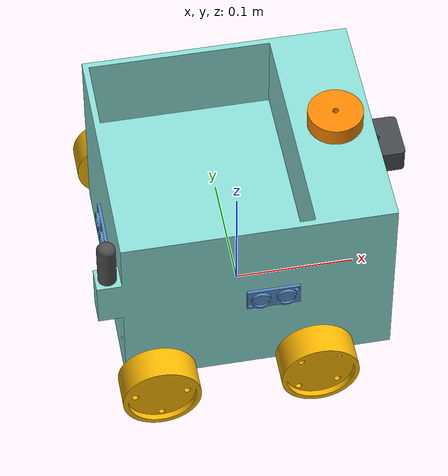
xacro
<?xml version="1.0" ?>
<!-- Generated using onshape-to-robot -->
<!-- Onshape document_id: 3023829f8e4e5c564f6b4985 -->
<robot name="tetrabot" xmlns:xacro="http://www.ros.org/wiki/xacro">

    <xacro:include filename="xacro_properties/xacro_properties.xacro" />
    <xacro:include filename="modules/base_y_llantas.xacro" />
    <xacro:include filename="modules/camara.xacro" />
    <xacro:include filename="modules/lidar.xacro" />
    <xacro:include filename="modules/accesorios.xacro" />
    <xacro:include filename="gazebo/gazebo_plugins.xacro" />
    <xacro:include filename="gazebo/gazebo_properties.xacro" />

</robot>

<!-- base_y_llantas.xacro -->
<!-- Generated using onshape-to-robot -->
<!-- Onshape document_id: 3023829f8e4e5c564f6b4985 -->
<robot xmlns:xacro="http://www.ros.org/wiki/xacro">

  <!-- Link base footprint -->
  <link name="base_footprint"/>
  <!-- Joint base footprint -->
  <joint name="base_joint" type="fixed">
      <parent link="base_footprint" />
      <child link="base_link" />
      <origin xyz="0 0 0.0158450026" rpy="0 0 0" />
  </joint>

  <!-- Link base_t -->
  <link name="base_link">
    <inertial>
      <origin xyz="0.0107572 -0.000338235 0.0779814" rpy="0 0 0"/>
      <mass value="4.83557"/>
      <inertia ixx="0.0260829" ixy="-0.000213984" ixz="-0.00395219" iyy="0.0299972" iyz="3.98093e-05" izz="0.0405276"/>
    </inertial>
    <!-- Part base_t -->
    <visual>
      <origin xyz="0 0 0" rpy="0 -0 0"/>
      <geometry>
        <mesh filename="package://my_robot_description/assets/base_t.stl"/>
      </geometry>
      <material name="base_t_material">
        <color rgba="0.537255 0.854902 0.827451 1"/>
      </material>
    </visual>
    <collision>
      <origin xyz="0 0 0" rpy="0 -0 0"/>
      <geometry>
        <mesh filename="package://my_robot_description/assets/base_t.stl"/>
      </geometry>
    </collision>
  </link>
  <!-- Link llanta_dere_del -->
  <link name="llanta_dere_del_link">
    <inertial>
      <origin xyz="-0 -0 -0.0264625" rpy="0 0 0"/>
      <mass value="0.0901579"/>
      <inertia ixx="2.81915e-05" ixy="0" ixz="0" iyy="2.83576e-05" iyz="-0" izz="4.79296e-05"/>
    </inertial>
    <!-- Part llanta_dere_del -->
    <visual>
      <origin xyz="-0 0 -0.015" rpy="1.5708 0 0"/>
      <geometry>
        <mesh filename="package://my_robot_description/assets/llanta_dere_del.stl"/>
      </geometry>
      <material name="llanta_dere_del_material">
        <color rgba="0.980392 0.713725 0.00392157 1"/>
      </material>
    </visual>
    <collision>
      <origin xyz="-0 0 -0.015" rpy="1.5708 0 0"/>
      <geometry>
        <mesh filename="package://my_robot_description/assets/llanta_dere_del.stl"/>
      </geometry>
    </collision>
  </link>
  <!-- Joint from base_t to llanta_dere_del -->
  <joint name="llanta_dere_del_joint" type="continuous">
    <origin xyz="0.0441 -0.095 0.0162" rpy="-1.5708 0.765592 0"/>
    <parent link="base_link"/>
    <child link="llanta_dere_del_link"/>
    <axis xyz="0 0 1"/>
    <limit effort="100" velocity="100"/>
  </joint>
  <!-- Link llanta_dere_tra -->
  <link name="llanta_dere_tra_link">
    <inertial>
      <origin xyz="-0 -0 -0.0264625" rpy="0 0 0"/>
      <mass value="0.0901579"/>
      <inertia ixx="2.81915e-05" ixy="0" ixz="0" iyy="2.83576e-05" iyz="0" izz="4.79296e-05"/>
    </inertial>
    <!-- Part llanta_dere_tra -->
    <visual>
      <origin xyz="-0 0 -0.015" rpy="1.5708 -0 0"/>
      <geometry>
        <mesh filename="package://my_robot_description/assets/llanta_dere_tra.stl"/>
      </geometry>
      <material name="llanta_dere_tra_material">
        <color rgba="0.980392 0.713725 0.00392157 1"/>
      </material>
    </visual>
    <collision>
      <origin xyz="-0 0 -0.015" rpy="1.5708 -0 0"/>
      <geometry>
        <mesh filename="package://my_robot_description/assets/llanta_dere_tra.stl"/>
      </geometry>
    </collision>
  </link>
  <!-- Joint from base_t to llanta_dere_tra -->
  <joint name="llanta_dere_tra_joint" type="continuous">
    <origin xyz="-0.0859 -0.095 0.0162" rpy="-1.5708 -0 0"/>
    <parent link="base_link"/>
    <child link="llanta_dere_tra_link"/>
    <axis xyz="0 0 1"/>
    <limit effort="100" velocity="100"/>
  </joint>
  <!-- Link llanta_iz_del -->
  <link name="llanta_iz_del_link">
    <inertial>
      <origin xyz="-0 0 -0.0264625" rpy="0 0 0"/>
      <mass value="0.0901579"/>
      <inertia ixx="2.81477e-05" ixy="0" ixz="0" iyy="2.84014e-05" iyz="0" izz="4.79296e-05"/>
    </inertial>
    <!-- Part llanta_iz_del -->
    <visual>
      <origin xyz="-0 0 -0.04169" rpy="-1.5708 -0 0"/>
      <geometry>
        <mesh filename="package://my_robot_description/assets/llanta_iz_del.stl"/>
      </geometry>
      <material name="llanta_iz_del_material">
        <color rgba="0.980392 0.713725 0.00392157 1"/>
      </material>
    </visual>
    <collision>
      <origin xyz="-0 0 -0.04169" rpy="-1.5708 -0 0"/>
      <geometry>
        <mesh filename="package://my_robot_description/assets/llanta_iz_del.stl"/>
      </geometry>
    </collision>
  </link>
  <!-- Joint from base_t to llanta_iz_del -->
  <joint name="llanta_iz_del_joint" type="continuous">
    <origin xyz="0.0441 0.095 0.0162" rpy="1.5708 -0 0"/>
    <parent link="base_link"/>
    <child link="llanta_iz_del_link"/>
    <axis xyz="0 0 -1"/>
    <limit effort="100" velocity="100"/>
  </joint>
  <!-- Link llanta_iz_tra -->
  <link name="llanta_iz_tra_link">
    <inertial>
      <origin xyz="0 0 -0.0264625" rpy="0 0 0"/>
      <mass value="0.0901579"/>
      <inertia ixx="2.81477e-05" ixy="0" ixz="0" iyy="2.84014e-05" iyz="0" izz="4.79296e-05"/>
    </inertial>
    <!-- Part llanta_iz_tra -->
    <visual>
      <origin xyz="0 0 -0.04169" rpy="-1.5708 -0 0"/>
      <geometry>
        <mesh filename="package://my_robot_description/assets/llanta_iz_tra.stl"/>
      </geometry>
      <material name="llanta_iz_tra_material">
        <color rgba="0.980392 0.713725 0.00392157 1"/>
      </material>
    </visual>
    <collision>
      <origin xyz="0 0 -0.04169" rpy="-1.5708 -0 0"/>
      <geometry>
        <mesh filename="package://my_robot_description/assets/llanta_iz_tra.stl"/>
      </geometry>
    </collision>
  </link>
  <!-- Joint from base_t to llanta_iz_tra -->
  <joint name="llanta_iz_tra_joint" type="continuous">
    <origin xyz="-0.0859 0.095 0.0162" rpy="1.5708 -0 0"/>
    <parent link="base_link"/>
    <child link="llanta_iz_tra_link"/>
    <axis xyz="0 0 -1"/>
    <limit effort="100" velocity="100"/>
  </joint>

</robot>

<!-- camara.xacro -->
<!-- Generated using onshape-to-robot -->
<!-- Onshape document_id: 3023829f8e4e5c564f6b4985 -->
<robot xmlns:xacro="http://www.ros.org/wiki/xacro">

<!-- Link camara_t_s -->
  <link name="camara_link">
    <inertial>
      <origin xyz="-0 0 -0.00516528" rpy="0 0 0"/>
      <mass value="0.0399941"/>
      <inertia ixx="6.59521e-06" ixy="0" ixz="0" iyy="6.59521e-06" iyz="0" izz="1.04207e-05"/>
    </inertial>
    <!-- Part camara_t_s -->
    <visual>
      <origin xyz="-0 0 0.005" rpy="3.14159 -0 1.5708"/>
      <geometry>
        <mesh filename="package://my_robot_description/assets/camara_t_s.stl"/>
      </geometry>
      <material name="camara_t_s_material">
        <color rgba="0.262745 0.282353 0.301961 1"/>
      </material>
    </visual>
    <collision>
      <origin xyz="-0 0 0.005" rpy="3.14159 -0 1.5708"/>
      <geometry>
        <mesh filename="package://my_robot_description/assets/camara_t_s.stl"/>
      </geometry>
    </collision>
  </link>
  <!-- Joint from base_t to camara_t_s -->
  <joint name="camara_joint" type="fixed">
    <origin xyz="0.115 0 0.135" rpy=" 0 0 0 "/>
    <parent link="base_link"/>
    <child link="camara_link"/>
    <axis xyz="0 0 1"/>
    <limit effort="100" velocity="100"/>
  </joint>

  <link name="camera_optical_link">
  </link>

  <joint name="camera_optical_joint" type="fixed">
      <!-- these values have to be these values otherwise the gazebo camera
          image won't be aligned properly with the frame it is supposedly
          originating from -->
      <origin xyz="0 0 0" rpy="${-pi/2} 0 ${-pi/2}"/>
      <parent link="camara_link"/>
      <child link="camera_optical_link"/>
  </joint>

</robot>

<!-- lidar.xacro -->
<!-- Generated using onshape-to-robot -->
<!-- Onshape document_id: 3023829f8e4e5c564f6b4985 -->
<robot xmlns:xacro="http://www.ros.org/wiki/xacro">

<!-- Link lidar_t_s -->
  <link name="lidar_link">
    <inertial>
      <origin xyz="-0 0 -0.00994579" rpy="0 0 0"/>
      <mass value="0.0591873"/>
      <inertia ixx="1.18545e-05" ixy="0" ixz="0" iyy="1.18545e-05" iyz="0" izz="1.49382e-05"/>
    </inertial>
    <!-- Part lidar_t_s -->
    <visual>
      <origin xyz="0 0 0.005" rpy="3.14159 -0 0"/>
      <geometry>
        <mesh filename="package://my_robot_description/assets/lidar_t_s.stl"/>
      </geometry>
      <material name="lidar_t_s_material">
        <color rgba="0.972549 0.529412 0.00392157 1"/>
      </material>
    </visual>
    <collision>
      <origin xyz="0 0 0.005" rpy="3.14159 -0 0"/>
      <geometry>
        <mesh filename="package://my_robot_description/assets/lidar_t_s.stl"/>
      </geometry>
    </collision>
  </link>
  <!-- Joint from base_t to lidar_t_s -->
  <joint name="lidar_joint" type="fixed">
    <origin xyz="0.08 0 0.175" rpy="0 0 0"/>
    <parent link="base_link"/>
    <child link="lidar_link"/>
    <axis xyz="0 0 1"/>
    <limit effort="100" velocity="100"/>
  </joint>

</robot>

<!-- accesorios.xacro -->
<!-- Generated using onshape-to-robot -->
<!-- Onshape document_id: 3023829f8e4e5c564f6b4985 -->
<robot xmlns:xacro="http://www.ros.org/wiki/xacro">

  <!-- Link faro_t_s -->
  <link name="faro_link">
    <inertial>
      <origin xyz="0 0 -0.000135915" rpy="0 0 0"/>
      <mass value="0.00334875"/>
      <inertia ixx="2.12684e-07" ixy="0" ixz="0" iyy="2.12684e-07" iyz="0" izz="2.18622e-07"/>
    </inertial>
    <!-- Part faro_t_s -->
    <visual>
      <origin xyz="0 0 0.01" rpy="3.14159 -0 1.5708"/>
      <geometry>
        <mesh filename="package://my_robot_description/assets/faro_t_s.stl"/>
      </geometry>
      <material name="faro_t_s_material">
        <color rgba="1 0.756863 0.054902 1"/>
      </material>
    </visual>
    <collision>
      <origin xyz="0 0 0.01" rpy="3.14159 -0 1.5708"/>
      <geometry>
        <mesh filename="package://my_robot_description/assets/faro_t_s.stl"/>
      </geometry>
    </collision>
  </link>
  <!-- Joint from base_t to faro_t_s -->
  <joint name="faro_joint" type="fixed">
    <origin xyz="0.12 -0 0.06" rpy="-1.5708 -0 1.5708"/>
    <parent link="base_link"/>
    <child link="faro_link"/>
    <axis xyz="0 0 1"/>
    <limit effort="100" velocity="100"/>
  </joint>
  <!-- Link antena_t_s -->
  <link name="antena_link">
    <inertial>
      <origin xyz="-0 0 -0.0269" rpy="0 0 0"/>
      <mass value="0.00954851"/>
      <inertia ixx="1.73735e-06" ixy="0" ixz="0" iyy="1.73735e-06" iyz="0" izz="2.49144e-07"/>
    </inertial>
    <!-- Part antena_t_s -->
    <visual>
      <origin xyz="-0 0 -0.01" rpy="3.14159 -0 0"/>
      <geometry>
        <mesh filename="package://my_robot_description/assets/antena_t_s.stl"/>
      </geometry>
      <material name="antena_t_s_material">
        <color rgba="0.301961 0.301961 0.301961 1"/>
      </material>
    </visual>
    <collision>
      <origin xyz="-0 0 -0.01" rpy="3.14159 -0 0"/>
      <geometry>
        <mesh filename="package://my_robot_description/assets/antena_t_s.stl"/>
      </geometry>
    </collision>
  </link>
  <!-- Joint from base_t to antena_t_s -->
  <joint name="antena_joint" type="fixed">
    <origin xyz="-0.12 -0.09 0.1125" rpy="3.14159 -0 0"/>
    <parent link="base_link"/>
    <child link="antena_link"/>
    <axis xyz="0 0 1"/>
    <limit effort="100" velocity="100"/>
  </joint>
  <!-- Link ulrasonico -->
  <link name="ulrasonico_der_link">
    <inertial>
      <origin xyz="-0.01865 0.0069 -0.00167339" rpy="0 0 0"/>
      <mass value="0.00321577"/>
      <inertia ixx="1.02141e-07" ixy="-1.0107e-08" ixz="0" iyy="4.76164e-07" iyz="0" izz="5.70005e-07"/>
    </inertial>
    <!-- Part ulrasonico -->
    <visual>
      <origin xyz="-0.01865 0.0069 0" rpy="1.5708 -0 0"/>
      <geometry>
        <mesh filename="package://my_robot_description/assets/ulrasonico.stl"/>
      </geometry>
      <material name="ulrasonico_material">
        <color rgba="0.32549 0.529412 0.752941 1"/>
      </material>
    </visual>
    <collision>
      <origin xyz="-0.01865 0.0069 0" rpy="1.5708 -0 0"/>
      <geometry>
        <mesh filename="package://my_robot_description/assets/ulrasonico.stl"/>
      </geometry>
    </collision>
  </link>
  <!-- Joint from base_t to ulrasonico -->
  <joint name="ultrasonico_der_joint" type="fixed">
    <origin xyz="0.03 -0.1 0.09" rpy="-1.5708 -0 0"/>
    <parent link="base_link"/>
    <child link="ulrasonico_der_link"/>
    <axis xyz="0 0 1"/>
    <limit effort="100" velocity="100"/>
  </joint>
  <!-- Link ulrasonico_2 -->
  <link name="ulrasonico_iz_link">
    <inertial>
      <origin xyz="-0.01865 0.0069 -0.00167339" rpy="0 0 0"/>
      <mass value="0.00321577"/>
      <inertia ixx="1.02141e-07" ixy="-1.0107e-08" ixz="0" iyy="4.76164e-07" iyz="0" izz="5.70005e-07"/>
    </inertial>
    <!-- Part ulrasonico_2 -->
    <visual>
      <origin xyz="-0.01865 0.0069 0" rpy="1.5708 -0 3.14159"/>
      <geometry>
        <mesh filename="package://my_robot_description/assets/ulrasonico.stl"/>
      </geometry>
      <material name="ulrasonico_2_material">
        <color rgba="0.32549 0.529412 0.752941 1"/>
      </material>
    </visual>
    <collision>
      <origin xyz="-0.01865 0.0069 0" rpy="1.5708 -0 3.14159"/>
      <geometry>
        <mesh filename="package://my_robot_description/assets/ulrasonico.stl"/>
      </geometry>
    </collision>
  </link>
  <!-- Joint from base_t to ulrasonico_2 -->
  <joint name="ultrasonico_iz_joint" type="fixed">
    <origin xyz="0.03 0.1 0.0762" rpy="1.5708 -0 0"/>
    <parent link="base_link"/>
    <child link="ulrasonico_iz_link"/>
    <axis xyz="0 0 1"/>
    <limit effort="100" velocity="100"/>
  </joint>
  <!-- Link ulrasonico_3 -->
  <link name="ulrasonico_tra_link">
    <inertial>
      <origin xyz="0.01865 -0.0069 -0.00167339" rpy="0 0 0"/>
      <mass value="0.00321577"/>
      <inertia ixx="1.02141e-07" ixy="-1.0107e-08" ixz="-0" iyy="4.76164e-07" iyz="0" izz="5.70005e-07"/>
    </inertial>
    <!-- Part ulrasonico_3 -->
    <visual>
      <origin xyz="0.01865 -0.0069 0" rpy="1.5708 -0 3.14159"/>
      <geometry>
        <mesh filename="package://my_robot_description/assets/ulrasonico.stl"/>
      </geometry>
      <material name="ulrasonico_3_material">
        <color rgba="0.32549 0.529412 0.752941 1"/>
      </material>
    </visual>
    <collision>
      <origin xyz="0.01865 -0.0069 0" rpy="1.5708 -0 3.14159"/>
      <geometry>
        <mesh filename="package://my_robot_description/assets/ulrasonico.stl"/>
      </geometry>
    </collision>
  </link>
  <!-- Joint from base_t to ulrasonico_3 -->
  <joint name="ultrasonico_tra_joint" type="fixed">
    <origin xyz="-0.11 -0.01865 0.0769" rpy="1.5708 -0 1.5708"/>
    <parent link="base_link"/>
    <child link="ulrasonico_tra_link"/>
    <axis xyz="0 0 1"/>
    <limit effort="100" velocity="100"/>
  </joint>

</robot>
